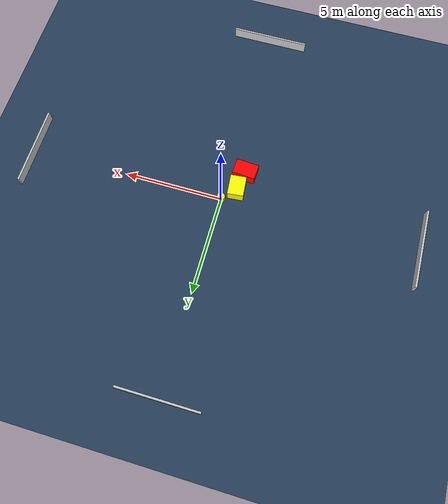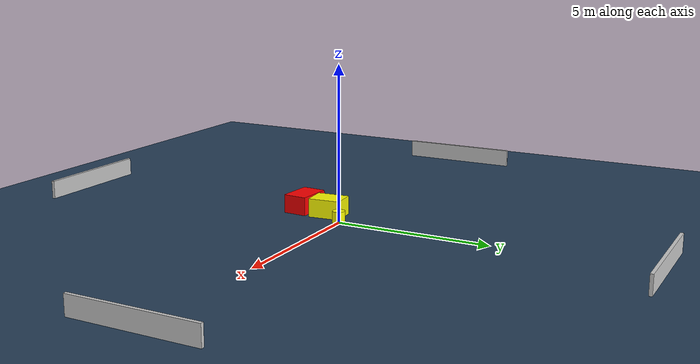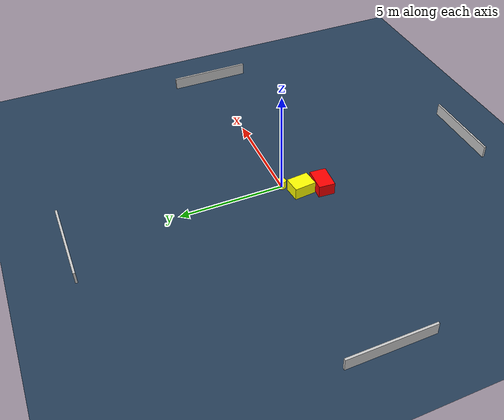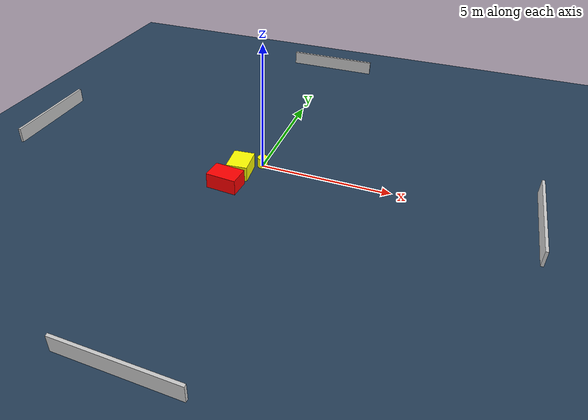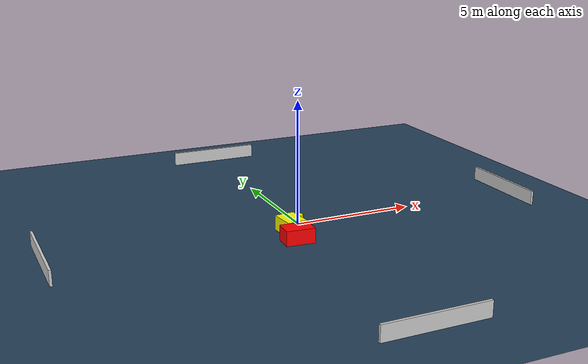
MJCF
<?xml version="1.0" ?>
<mujoco model="generated_environment">
  <option timestep="0.01" integrator="RK4" cone="elliptic"/>
  <default>
    <geom density="1"/>
  </default>
  <asset>
    <texture builtin="gradient" height="3072" name="skybox" rgb1="0.3 0.5 0.7" rgb2="0 0 0" type="skybox" width="512"/>
    <texture builtin="checker" height="300" name="groundplane" rgb1="0.2 0.3 0.4" rgb2="0.1 0.2 0.3" type="2d" width="300"/>
    <material name="groundplane" reflectance="0.2" texrepeat="5 5" texture="groundplane"/>
  </asset>
  <worldbody>
    <light dir="0 0 -1" directional="true" pos="0 0 1.5"/>
    <geom condim="3" friction="0.5 0.005 0.001" material="groundplane" name="floor" pos="0 0 0" size="0 0 0.05" type="plane"/>
    <body name="walls">
      <geom name="wall_1" condim="4" pos="-10.0 0.0 0.3" rgba="0.800000011920929 0.800000011920929 0.800000011920929 1.0" size="0.05 2.0 0.3" type="box"/>
      <geom name="wall_2" condim="4" pos="10.0 0.0 0.3" rgba="0.800000011920929 0.800000011920929 0.800000011920929 1.0" size="0.05 2.0 0.3" type="box"/>
      <geom name="wall_3" condim="4" pos="0.0 -10.0 0.3" rgba="0.800000011920929 0.800000011920929 0.800000011920929 1.0" size="2.0 0.05 0.3" type="box"/>
      <geom name="wall_4" condim="4" pos="0.0 10.0 0.3" rgba="0.800000011920929 0.800000011920929 0.800000011920929 1.0" size="2.0 0.05 0.3" type="box"/>
    </body>
    <body name="robot">
      <joint name="joint_x" type="slide" pos="0 0 0" axis="1 0 0"/>
      <joint name="joint_y" type="slide" pos="0 0 0" axis="0 1 0"/>
      <geom name="robot" type="cylinder" pos="0.0 0.0 0.2" size="0.2 0.2 0.0" mass="5.0" friction="1.0 0.005 0.0001" condim="4" rgba="1.0 1.0 0.0 1.0"/>
    </body>
    <body name="obstacle_1_movable">
      <geom name="obstacle_1_movable" condim="4" pos="-0.6244394463863072 -0.7086167100996743 0.3" euler="0 0 95.45782123376465" friction="0.0 0.005 0.001" rgba="1.0 1.0 0.0 1.0" size="0.5247486940528325 0.40357309129221375 0.3" type="box" mass="0.1"/>
      <joint type="free"/>
    </body>
    <body name="obstacle_2_static">
      <geom name="obstacle_2_static" condim="4" pos="-0.8034336557556847 -1.703408184336137 0.3" euler="0 0 356.1520330296853" friction="0.0 0.005 0.001" rgba="1.0 0.0 0.0 1.0" size="0.5813900240900413 0.39219728076197496 0.3" type="box"/>
    </body>
  </worldbody>
  <actuator>
    <motor name="actuator_x" joint="joint_x" gear="1" ctrlrange="-1 1"/>
    <motor name="actuator_y" joint="joint_y" gear="1" ctrlrange="-1 1"/>
  </actuator>
</mujoco>
